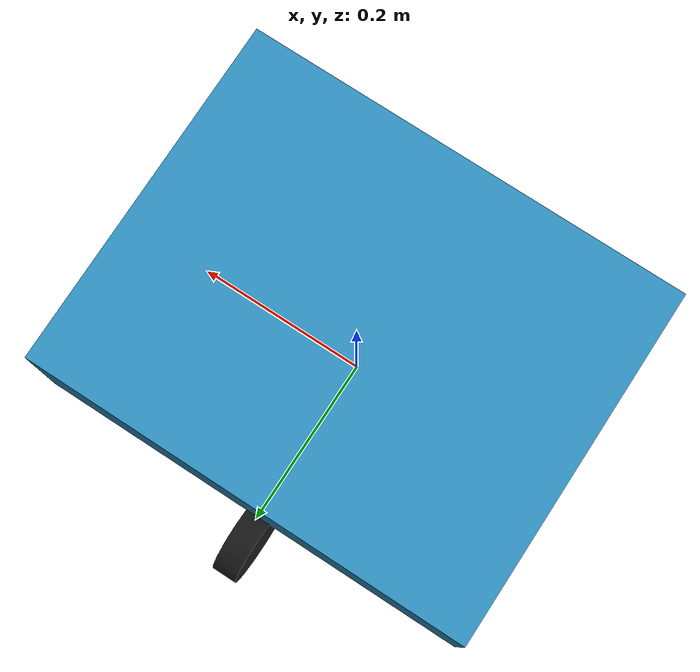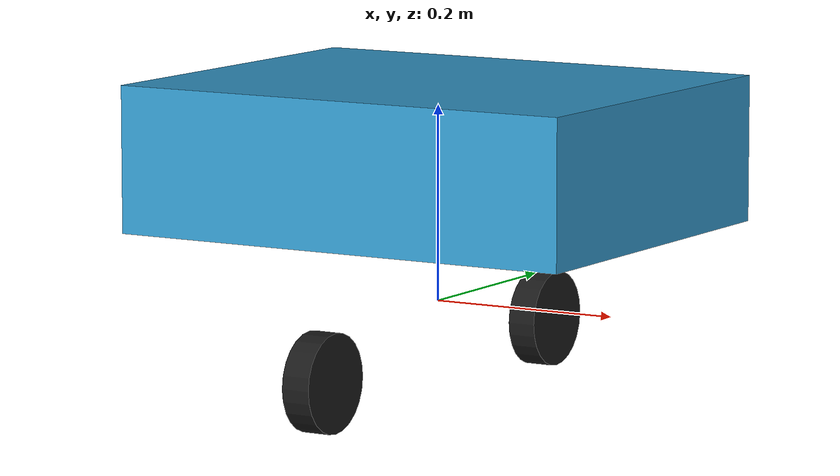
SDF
<?xml version="1.0" ?>
<sdf version="1.9">
  <model name="amr">
    <static>false</static>

    <!-- Robot body -->
    <link name="base_link">
      <pose>0 0 0.15 0 0 0</pose>

      <!-- Inertial -->
      <inertial>
        <mass>15.0</mass>
        <inertia>
          <ixx>0.1</ixx>
          <iyy>0.1</iyy>
          <izz>0.15</izz>
          <ixy>0</ixy>
          <ixz>0</ixz>
          <iyz>0</iyz>
        </inertia>
      </inertial>

      <!-- Visual — robot body (rectangular base) -->
      <visual name="body_visual">
        <geometry>
          <box><size>0.5 0.4 0.15</size></box>
        </geometry>
        <material>
          <ambient>0.2 0.6 0.8 1</ambient>
          <diffuse>0.2 0.6 0.8 1</diffuse>
        </material>
      </visual>

      <!-- Collision -->
      <collision name="body_collision">
        <geometry>
          <box><size>0.5 0.4 0.15</size></box>
        </geometry>
        <surface>
          <friction>
            <ode>
              <mu>0.5</mu>
              <mu2>0.5</mu2>
            </ode>
          </friction>
        </surface>
      </collision>
    </link>

    <!-- Left wheel -->
    <link name="left_wheel">
      <pose>0 0.22 -0.05 0 1.5708 0</pose>
      <inertial>
        <mass>0.5</mass>
        <inertia>
          <ixx>0.001</ixx>
          <iyy>0.001</iyy>
          <izz>0.001</izz>
          <ixy>0</ixy>
          <ixz>0</ixz>
          <iyz>0</iyz>
        </inertia>
      </inertial>
      <visual name="wheel_visual">
        <geometry>
          <cylinder><radius>0.05</radius><length>0.03</length></cylinder>
        </geometry>
        <material>
          <ambient>0.1 0.1 0.1 1</ambient>
          <diffuse>0.1 0.1 0.1 1</diffuse>
        </material>
      </visual>
      <collision name="wheel_collision">
        <geometry>
          <cylinder><radius>0.05</radius><length>0.03</length></cylinder>
        </geometry>
      </collision>
    </link>

    <!-- Right wheel -->
    <link name="right_wheel">
      <pose>0 -0.22 -0.05 0 1.5708 0</pose>
      <inertial>
        <mass>0.5</mass>
        <inertia>
          <ixx>0.001</ixx>
          <iyy>0.001</iyy>
          <izz>0.001</izz>
          <ixy>0</ixy>
          <ixz>0</ixz>
          <iyz>0</iyz>
        </inertia>
      </inertial>
      <visual name="wheel_visual">
        <geometry>
          <cylinder><radius>0.05</radius><length>0.03</length></cylinder>
        </geometry>
        <material>
          <ambient>0.1 0.1 0.1 1</ambient>
          <diffuse>0.1 0.1 0.1 1</diffuse>
        </material>
      </visual>
      <collision name="wheel_collision">
        <geometry>
          <cylinder><radius>0.05</radius><length>0.03</length></cylinder>
        </geometry>
      </collision>
    </link>

    <!-- LiDAR sensor (top of robot) -->
    <link name="lidar_link">
      <pose>0 0 0.1 0 0 0</pose>
      <visual name="lidar_visual">
        <geometry>
          <cylinder><radius>0.04</radius><length>0.04</length></cylinder>
        </geometry>
        <material>
          <ambient>0.8 0.1 0.1 1</ambient>
          <diffuse>0.8 0.1 0.1 1</diffuse>
        </material>
      </visual>
    </link>

    <!-- Joints -->
    <joint name="left_wheel_joint" type="revolute">
      <parent>base_link</parent>
      <child>left_wheel</child>
      <pose>0 0.22 -0.10 0 0 0</pose>
      <axis>
        <xyz>0 0 1</xyz>
        <limit>
          <lower>-1e16</lower>
          <upper>1e16</upper>
        </limit>
      </axis>
    </joint>

    <joint name="right_wheel_joint" type="revolute">
      <parent>base_link</parent>
      <child>right_wheel</child>
      <pose>0 -0.22 -0.10 0 0 0</pose>
      <axis>
        <xyz>0 0 1</xyz>
        <limit>
          <lower>-1e16</lower>
          <upper>1e16</upper>
        </limit>
      </axis>
    </joint>

    <joint name="lidar_joint" type="fixed">
      <parent>base_link</parent>
      <child>lidar_link</child>
    </joint>

    <!-- Differential drive plugin -->
    <plugin filename="gz-sim-diff-drive-system" name="gz::sim::systems::DiffDrive">
      <left_joint>left_wheel_joint</left_joint>
      <right_joint>right_wheel_joint</right_joint>
      <wheel_separation>0.44</wheel_separation>
      <wheel_radius>0.05</wheel_radius>
      <odom_frame_id>odom</odom_frame_id>
      <tf_frame_id>base_footprint</tf_frame_id>
      <odom_topic>odom</odom_topic>
      <cmd_vel_topic>cmd_vel</cmd_vel_topic>
    </plugin>

    <!-- LiDAR sensor plugin -->
    <plugin filename="gz-sim-sensors-system" name="gz::sim::systems::Sensors">
      <render_engine>ogre2</render_engine>
    </plugin>

    <!-- Bumper (contact detection) -->
    <plugin filename="gz-sim-contact-system" name="gz::sim::systems::Contact">
      <contact_sensor_name>contact_sensor</contact_sensor_name>
    </plugin>

  </model>
</sdf>
